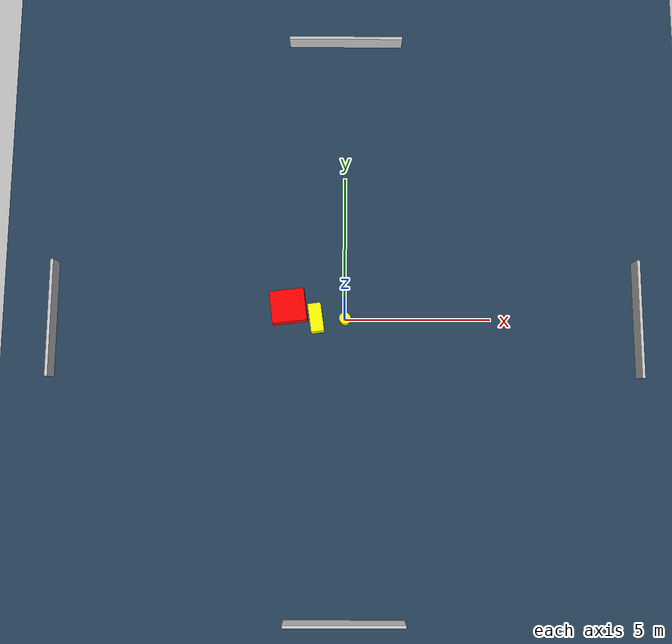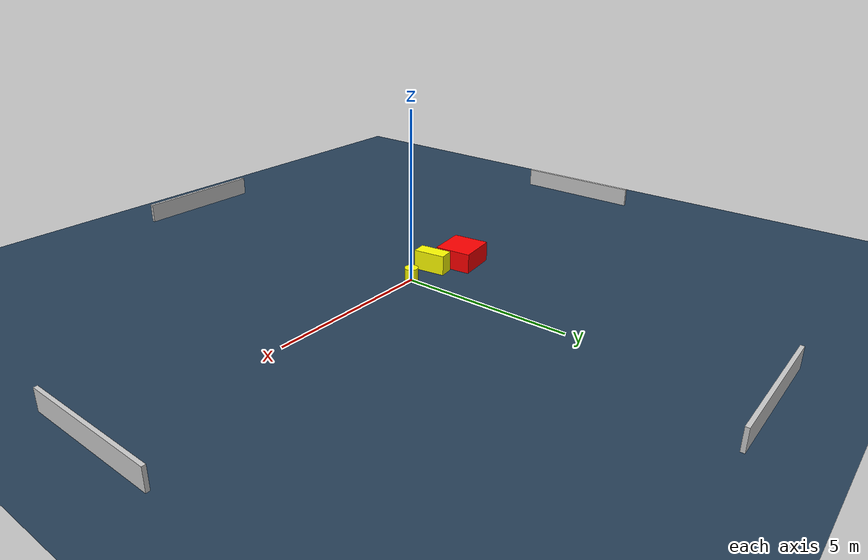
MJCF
<?xml version="1.0" ?>
<mujoco model="generated_environment">
  <option timestep="0.01" integrator="RK4" cone="elliptic"/>
  <default>
    <geom density="1"/>
  </default>
  <asset>
    <texture builtin="gradient" height="3072" name="skybox" rgb1="0.3 0.5 0.7" rgb2="0 0 0" type="skybox" width="512"/>
    <texture builtin="checker" height="300" name="groundplane" rgb1="0.2 0.3 0.4" rgb2="0.1 0.2 0.3" type="2d" width="300"/>
    <material name="groundplane" reflectance="0.2" texrepeat="5 5" texture="groundplane"/>
  </asset>
  <worldbody>
    <light dir="0 0 -1" directional="true" pos="0 0 1.5"/>
    <geom condim="3" friction="0.5 0.005 0.001" material="groundplane" name="floor" pos="0 0 0" size="0 0 0.05" type="plane"/>
    <body name="walls">
      <geom name="wall_1" condim="4" pos="-10.0 0.0 0.3" rgba="0.800000011920929 0.800000011920929 0.800000011920929 1.0" size="0.05 2.0 0.3" type="box"/>
      <geom name="wall_2" condim="4" pos="10.0 0.0 0.3" rgba="0.800000011920929 0.800000011920929 0.800000011920929 1.0" size="0.05 2.0 0.3" type="box"/>
      <geom name="wall_3" condim="4" pos="0.0 -10.0 0.3" rgba="0.800000011920929 0.800000011920929 0.800000011920929 1.0" size="2.0 0.05 0.3" type="box"/>
      <geom name="wall_4" condim="4" pos="0.0 10.0 0.3" rgba="0.800000011920929 0.800000011920929 0.800000011920929 1.0" size="2.0 0.05 0.3" type="box"/>
    </body>
    <body name="robot">
      <joint name="joint_x" type="slide" pos="0 0 0" axis="1 0 0"/>
      <joint name="joint_y" type="slide" pos="0 0 0" axis="0 1 0"/>
      <geom name="robot" type="cylinder" pos="0.0 0.0 0.2" size="0.2 0.2 0.0" mass="5.0" friction="1.0 0.005 0.0001" condim="4" rgba="1.0 1.0 0.0 1.0"/>
    </body>
    <body name="obstacle_1_movable">
      <geom name="obstacle_1_movable" condim="4" pos="-0.9857035651208668 0.009835125659668738 0.3" euler="0 0 97.97169725224221" friction="0.0 0.005 0.001" rgba="1.0 1.0 0.0 1.0" size="0.48128909184947893 0.22312359293839013 0.3" type="box" mass="0.1"/>
      <joint type="free"/>
    </body>
    <body name="obstacle_2_static">
      <geom name="obstacle_2_static" condim="4" pos="-1.9320602867643488 0.4035474063333928 0.3" euler="0 0 6.851313822538114" friction="0.0 0.005 0.001" rgba="1.0 0.0 0.0 1.0" size="0.5896884910444387 0.5472635985472287 0.3" type="box"/>
    </body>
  </worldbody>
  <actuator>
    <motor name="actuator_x" joint="joint_x" gear="1" ctrlrange="-1 1"/>
    <motor name="actuator_y" joint="joint_y" gear="1" ctrlrange="-1 1"/>
  </actuator>
</mujoco>
